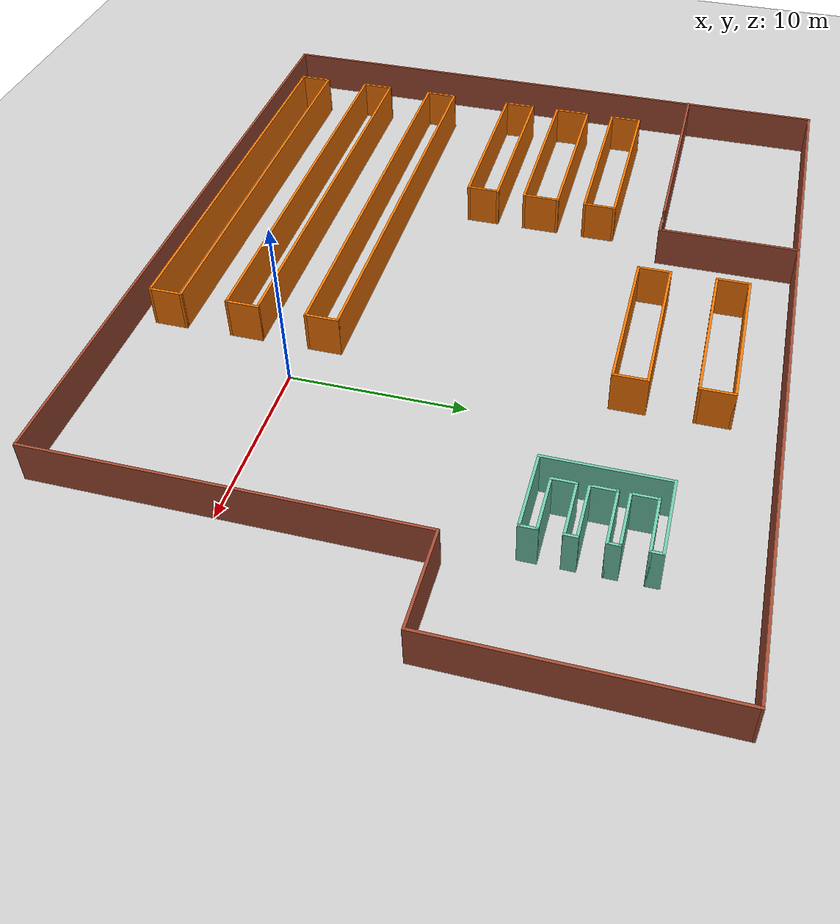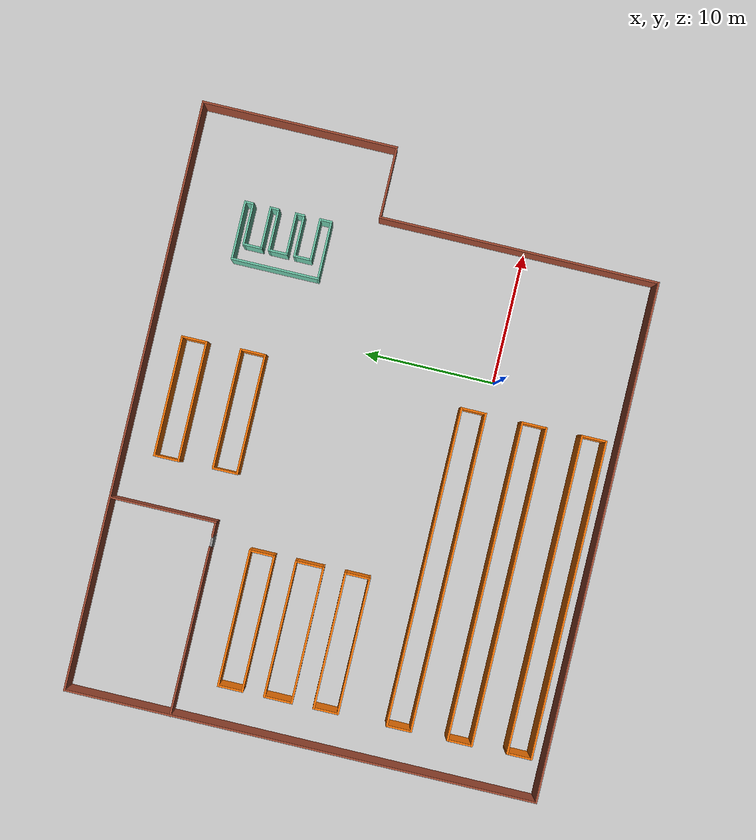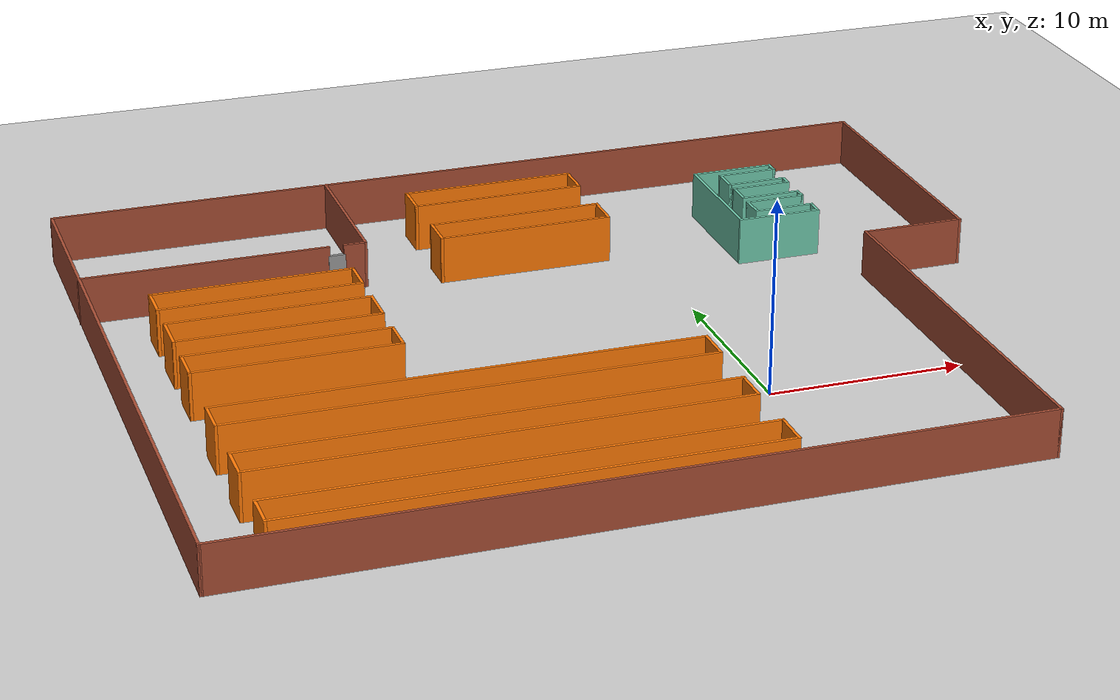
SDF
<sdf version="1.6">
 <world name="default">
  <light name="sun" type="directional">
   <pose>0 0 10 0 -0 0</pose>
   <diffuse>0.8 0.8 0.8 1</diffuse>
   <specular>0.2 0.2 0.2 1</specular>
   <attenuation>
    <range>1000</range>
    <constant>0.9</constant>
    <linear>0.01</linear>
    <quadratic>0.001</quadratic>
   </attenuation>
   <direction>-0.5 0.1 -0.9</direction>
  </light>
  <model name="ground_plane">
   <static>1</static>
   <link name="link">
    <collision name="collision">
     <geometry><plane><normal>0 0 1</normal><size>100 100</size></plane></geometry>
     <surface>
      <contact><collide_bitmask>65535</collide_bitmask></contact>
      <friction><ode><mu>100</mu><mu2>50</mu2></ode></friction>
     </surface>
    </collision>
    <visual name="visual">
     <cast_shadows>0</cast_shadows>
     <geometry><plane><normal>0 0 1</normal><size>100 100</size></plane></geometry>
     <material>
      <script><uri>file://media/materials/scripts/gazebo.material</uri><name>Gazebo/Grey</name></script>
     </material>
    </visual>
   </link>
  </model>
  <gravity>0 0 -9.8</gravity>
  <magnetic_field>6e-06 2.3e-05 -4.2e-05</magnetic_field>
  <atmosphere type="adiabatic"/>
  <physics name="default_physics" default="0" type="ode">
   <max_step_size>0.001</max_step_size>
   <real_time_factor>1</real_time_factor>
   <real_time_update_rate>1000</real_time_update_rate>
  </physics>
  <scene><ambient>0.4 0.4 0.4 1</ambient><background>0.7 0.7 0.7 1</background><shadows>1</shadows></scene>
  <audio><device>default</device></audio>
  <spherical_coordinates>
   <surface_model>EARTH_WGS84</surface_model>
   <latitude_deg>0</latitude_deg>
   <longitude_deg>0</longitude_deg>
   <elevation>0</elevation>
   <heading_deg>0</heading_deg>
  </spherical_coordinates>
  <model name="si_amr_factory">
   <pose>-7.25935 8.01043 0 0 -0 0</pose>
   <link name="Door_0">
    <collision name="Door_0_Collision">
     <geometry><box><size>0.9 0.17 2</size></box></geometry>
     <pose>0 0 1 0 -0 0</pose>
    </collision>
    <visual name="Door_0_Visual">
     <pose>0 0 1 0 -0 0</pose>
     <geometry><box><size>0.9 0.17 2</size></box></geometry>
     <material>
      <script><uri>file://media/materials/scripts/gazebo.material</uri><name>Gazebo/Grey</name></script>
     </material>
    </visual>
    <pose>-9.24755 9.98097 0 0 -0 0</pose>
   </link>
   <link name="Wall_0">
    <collision name="Wall_0_Collision">
     <geometry><box><size>40 0.15 2.5</size></box></geometry>
     <pose>0 0 1.25 0 -0 0</pose>
    </collision>
    <visual name="Wall_0_Visual">
     <pose>0 0 1.25 0 -0 0</pose>
     <geometry><box><size>40 0.15 2.5</size></box></geometry>
     <material>
      <script><uri>file://media/materials/scripts/gazebo.material</uri><name>Gazebo/Bricks</name></script>
      <ambient>1 1 1 1</ambient>
     </material>
     <meta><layer>0</layer></meta>
    </visual>
    <pose>-2.6749 -18.1 0 0 -0 0</pose>
   </link>
   <link name="Wall_1">
    <collision name="Wall_1_Collision">
     <geometry><box><size>21.5 0.15 2.5</size></box></geometry>
     <pose>0 0 1.25 0 -0 0</pose>
    </collision>
    <visual name="Wall_1_Visual">
     <pose>0 0 1.25 0 -0 0</pose>
     <geometry><box><size>21.5 0.15 2.5</size></box></geometry>
     <material>
      <script><uri>file://media/materials/scripts/gazebo.material</uri><name>Gazebo/Bricks</name></script>
      <ambient>1 1 1 1</ambient>
     </material>
     <meta><layer>0</layer></meta>
    </visual>
    <pose>17.2501 -7.425 0 0 -0 1.5708</pose>
   </link>
   <link name="Wall_10">
    <collision name="Wall_10_Collision">
     <geometry><box><size>2 0.15 2.5</size></box></geometry>
     <pose>0 0 1.25 0 -0 0</pose>
    </collision>
    <visual name="Wall_10_Visual">
     <pose>0 0 1.25 0 -0 0</pose>
     <geometry><box><size>2 0.15 2.5</size></box></geometry>
     <material>
      <script><uri>file://media/materials/scripts/gazebo.material</uri><name>Gazebo/Grey</name></script>
      <ambient>0.996078 0.47451 0.0196078 1</ambient>
     </material>
     <meta><layer>0</layer></meta>
    </visual>
    <pose>-19.5227 -16.0937 0 0 -0 1.5708</pose>
   </link>
   <link name="Wall_12">
    <collision name="Wall_12_Collision">
     <geometry><box><size>2 0.15 2.5</size></box></geometry>
     <pose>0 0 1.25 0 -0 0</pose>
    </collision>
    <visual name="Wall_12_Visual">
     <pose>0 0 1.25 0 -0 0</pose>
     <geometry><box><size>2 0.15 2.5</size></box></geometry>
     <material>
      <script><uri>file://media/materials/scripts/gazebo.material</uri><name>Gazebo/Grey</name></script>
      <ambient>0.996078 0.47451 0.0196078 1</ambient>
     </material>
     <meta><layer>0</layer></meta>
    </visual>
    <pose>-19.575 -11.5221 0 0 -0 1.5708</pose>
   </link>
   <link name="Wall_13">
    <collision name="Wall_13_Collision">
     <geometry><box><size>24.5 0.15 2.5</size></box></geometry>
     <pose>0 0 1.25 0 -0 0</pose>
    </collision>
    <visual name="Wall_13_Visual">
     <pose>0 0 1.25 0 -0 0</pose>
     <geometry><box><size>24.5 0.15 2.5</size></box></geometry>
     <material>
      <script><uri>file://media/materials/scripts/gazebo.material</uri><name>Gazebo/Grey</name></script>
      <ambient>0.996078 0.47451 0.0196078 1</ambient>
     </material>
     <meta><layer>0</layer></meta>
    </visual>
    <pose>-7.39999 -10.5971 0 0 -0 0</pose>
   </link>
   <link name="Wall_14">
    <collision name="Wall_14_Collision">
     <geometry><box><size>2 0.15 2.5</size></box></geometry>
     <pose>0 0 1.25 0 -0 0</pose>
    </collision>
    <visual name="Wall_14_Visual">
     <pose>0 0 1.25 0 -0 0</pose>
     <geometry><box><size>2 0.15 2.5</size></box></geometry>
     <material>
      <script><uri>file://media/materials/scripts/gazebo.material</uri><name>Gazebo/Grey</name></script>
      <ambient>0.996078 0.47451 0.0196078 1</ambient>
     </material>
     <meta><layer>0</layer></meta>
    </visual>
    <pose>4.77501 -11.5221 0 0 -0 -1.5708</pose>
   </link>
   <link name="Wall_15">
    <collision name="Wall_15_Collision">
     <geometry><box><size>24.5 0.15 2.5</size></box></geometry>
     <pose>0 0 1.25 0 -0 0</pose>
    </collision>
    <visual name="Wall_15_Visual">
     <pose>0 0 1.25 0 -0 0</pose>
     <geometry><box><size>24.5 0.15 2.5</size></box></geometry>
     <material>
      <script><uri>file://media/materials/scripts/gazebo.material</uri><name>Gazebo/Grey</name></script>
      <ambient>0.996078 0.47451 0.0196078 1</ambient>
     </material>
     <meta><layer>0</layer></meta>
    </visual>
    <pose>-7.39999 -12.4471 0 0 -0 3.14159</pose>
   </link>
   <link name="Wall_17">
    <collision name="Wall_17_Collision">
     <geometry><box><size>2 0.15 2.5</size></box></geometry>
     <pose>0 0 1.25 0 -0 0</pose>
    </collision>
    <visual name="Wall_17_Visual">
     <pose>0 0 1.25 0 -0 0</pose>
     <geometry><box><size>2 0.15 2.5</size></box></geometry>
     <material>
      <script><uri>file://media/materials/scripts/gazebo.material</uri><name>Gazebo/Grey</name></script>
      <ambient>0.996078 0.47451 0.0196078 1</ambient>
     </material>
     <meta><layer>0</layer></meta>
    </visual>
    <pose>-19.575 -6.86388 0 0 -0 1.5708</pose>
   </link>
   <link name="Wall_18">
    <collision name="Wall_18_Collision">
     <geometry><box><size>24.5 0.15 2.5</size></box></geometry>
     <pose>0 0 1.25 0 -0 0</pose>
    </collision>
    <visual name="Wall_18_Visual">
     <pose>0 0 1.25 0 -0 0</pose>
     <geometry><box><size>24.5 0.15 2.5</size></box></geometry>
     <material>
      <script><uri>file://media/materials/scripts/gazebo.material</uri><name>Gazebo/Grey</name></script>
      <ambient>0.996078 0.47451 0.0196078 1</ambient>
     </material>
     <meta><layer>0</layer></meta>
    </visual>
    <pose>-7.39999 -5.93888 0 0 -0 0</pose>
   </link>
   <link name="Wall_19">
    <collision name="Wall_19_Collision">
     <geometry><box><size>2 0.15 2.5</size></box></geometry>
     <pose>0 0 1.25 0 -0 0</pose>
    </collision>
    <visual name="Wall_19_Visual">
     <pose>0 0 1.25 0 -0 0</pose>
     <geometry><box><size>2 0.15 2.5</size></box></geometry>
     <material>
      <script><uri>file://media/materials/scripts/gazebo.material</uri><name>Gazebo/Grey</name></script>
      <ambient>0.996078 0.47451 0.0196078 1</ambient>
     </material>
     <meta><layer>0</layer></meta>
    </visual>
    <pose>4.77501 -6.86388 0 0 -0 -1.5708</pose>
   </link>
   <link name="Wall_2">
    <collision name="Wall_2_Collision">
     <geometry><box><size>5.5 0.15 2.5</size></box></geometry>
     <pose>0 0 1.25 0 -0 0</pose>
    </collision>
    <visual name="Wall_2_Visual">
     <pose>0 0 1.25 0 -0 0</pose>
     <geometry><box><size>5.5 0.15 2.5</size></box></geometry>
     <material>
      <script><uri>file://media/materials/scripts/gazebo.material</uri><name>Gazebo/Bricks</name></script>
      <ambient>1 1 1 1</ambient>
     </material>
     <meta><layer>0</layer></meta>
    </visual>
    <pose>19.9251 3.25 0 0 -0 0</pose>
   </link>
   <link name="Wall_20">
    <collision name="Wall_20_Collision">
     <geometry><box><size>24.5 0.15 2.5</size></box></geometry>
     <pose>0 0 1.25 0 -0 0</pose>
    </collision>
    <visual name="Wall_20_Visual">
     <pose>0 0 1.25 0 -0 0</pose>
     <geometry><box><size>24.5 0.15 2.5</size></box></geometry>
     <material>
      <script><uri>file://media/materials/scripts/gazebo.material</uri><name>Gazebo/Grey</name></script>
      <ambient>0.996078 0.47451 0.0196078 1</ambient>
     </material>
     <meta><layer>0</layer></meta>
    </visual>
    <pose>-7.39999 -7.78888 0 0 -0 3.14159</pose>
   </link>
   <link name="Wall_28">
    <collision name="Wall_28_Collision">
     <geometry><box><size>10.5 0.15 2.5</size></box></geometry>
     <pose>0 0 1.25 0 -0 0</pose>
    </collision>
    <visual name="Wall_28_Visual">
     <pose>0 0 1.25 0 -0 0</pose>
     <geometry><box><size>10.5 0.15 2.5</size></box></geometry>
     <material>
      <script><uri>file://media/materials/scripts/gazebo.material</uri><name>Gazebo/Grey</name></script>
      <ambient>0.996078 0.47451 0.0196078 1</ambient>
     </material>
     <meta><layer>0</layer></meta>
    </visual>
    <pose>-14.3745 -0.32266 0 0 -0 0</pose>
   </link>
   <link name="Wall_29">
    <collision name="Wall_29_Collision">
     <geometry><box><size>2 0.15 2.5</size></box></geometry>
     <pose>0 0 1.25 0 -0 0</pose>
    </collision>
    <visual name="Wall_29_Visual">
     <pose>0 0 1.25 0 -0 0</pose>
     <geometry><box><size>2 0.15 2.5</size></box></geometry>
     <material>
      <script><uri>file://media/materials/scripts/gazebo.material</uri><name>Gazebo/Grey</name></script>
      <ambient>0.996078 0.47451 0.0196078 1</ambient>
     </material>
     <meta><layer>0</layer></meta>
    </visual>
    <pose>-9.19952 -1.24766 0 0 -0 -1.5708</pose>
   </link>
   <link name="Wall_3">
    <collision name="Wall_3_Collision">
     <geometry><box><size>15 0.15 2.5</size></box></geometry>
     <pose>0 0 1.25 0 -0 0</pose>
    </collision>
    <visual name="Wall_3_Visual">
     <pose>0 0 1.25 0 -0 0</pose>
     <geometry><box><size>15 0.15 2.5</size></box></geometry>
     <material>
      <script><uri>file://media/materials/scripts/gazebo.material</uri><name>Gazebo/Bricks</name></script>
      <ambient>1 1 1 1</ambient>
     </material>
     <meta><layer>0</layer></meta>
    </visual>
    <pose>22.6001 10.675 0 0 -0 1.5708</pose>
   </link>
   <link name="Wall_30">
    <collision name="Wall_30_Collision">
     <geometry><box><size>10.5 0.15 2.5</size></box></geometry>
     <pose>0 0 1.25 0 -0 0</pose>
    </collision>
    <visual name="Wall_30_Visual">
     <pose>0 0 1.25 0 -0 0</pose>
     <geometry><box><size>10.5 0.15 2.5</size></box></geometry>
     <material>
      <script><uri>file://media/materials/scripts/gazebo.material</uri><name>Gazebo/Grey</name></script>
      <ambient>0.996078 0.47451 0.0196078 1</ambient>
     </material>
     <meta><layer>0</layer></meta>
    </visual>
    <pose>-14.3745 -2.17266 0 0 -0 3.14159</pose>
   </link>
   <link name="Wall_31">
    <collision name="Wall_31_Collision">
     <geometry><box><size>2 0.15 2.5</size></box></geometry>
     <pose>0 0 1.25 0 -0 0</pose>
    </collision>
    <visual name="Wall_31_Visual">
     <pose>0 0 1.25 0 -0 0</pose>
     <geometry><box><size>2 0.15 2.5</size></box></geometry>
     <material>
      <script><uri>file://media/materials/scripts/gazebo.material</uri><name>Gazebo/Grey</name></script>
      <ambient>0.996078 0.47451 0.0196078 1</ambient>
     </material>
     <meta><layer>0</layer></meta>
    </visual>
    <pose>-19.5495 -1.24766 0 0 -0 1.5708</pose>
   </link>
   <link name="Wall_33">
    <collision name="Wall_33_Collision">
     <geometry><box><size>10.5 0.15 2.5</size></box></geometry>
     <pose>0 0 1.25 0 -0 0</pose>
    </collision>
    <visual name="Wall_33_Visual">
     <pose>0 0 1.25 0 -0 0</pose>
     <geometry><box><size>10.5 0.15 2.5</size></box></geometry>
     <material>
      <script><uri>file://media/materials/scripts/gazebo.material</uri><name>Gazebo/Grey</name></script>
      <ambient>0.996078 0.47451 0.0196078 1</ambient>
     </material>
     <meta><layer>0</layer></meta>
    </visual>
    <pose>-14.3745 3.46933 0 0 -0 0</pose>
   </link>
   <link name="Wall_34">
    <collision name="Wall_34_Collision">
     <geometry><box><size>2.25 0.15 2.5</size></box></geometry>
     <pose>0 0 1.25 0 -0 0</pose>
    </collision>
    <visual name="Wall_34_Visual">
     <pose>0 0 1.25 0 -0 0</pose>
     <geometry><box><size>2.25 0.15 2.5</size></box></geometry>
     <material>
      <script><uri>file://media/materials/scripts/gazebo.material</uri><name>Gazebo/Grey</name></script>
      <ambient>0.996078 0.47451 0.0196078 1</ambient>
     </material>
     <meta><layer>0</layer></meta>
    </visual>
    <pose>-9.19952 2.41933 0 0 -0 -1.5708</pose>
   </link>
   <link name="Wall_35">
    <collision name="Wall_35_Collision">
     <geometry><box><size>10.5 0.15 2.5</size></box></geometry>
     <pose>0 0 1.25 0 -0 0</pose>
    </collision>
    <visual name="Wall_35_Visual">
     <pose>0 0 1.25 0 -0 0</pose>
     <geometry><box><size>10.5 0.15 2.5</size></box></geometry>
     <material>
      <script><uri>file://media/materials/scripts/gazebo.material</uri><name>Gazebo/Grey</name></script>
      <ambient>0.996078 0.47451 0.0196078 1</ambient>
     </material>
     <meta><layer>0</layer></meta>
    </visual>
    <pose>-14.3745 1.36933 0 0 -0 3.14159</pose>
   </link>
   <link name="Wall_36">
    <collision name="Wall_36_Collision">
     <geometry><box><size>2.25 0.15 2.5</size></box></geometry>
     <pose>0 0 1.25 0 -0 0</pose>
    </collision>
    <visual name="Wall_36_Visual">
     <pose>0 0 1.25 0 -0 0</pose>
     <geometry><box><size>2.25 0.15 2.5</size></box></geometry>
     <material>
      <script><uri>file://media/materials/scripts/gazebo.material</uri><name>Gazebo/Grey</name></script>
      <ambient>0.996078 0.47451 0.0196078 1</ambient>
     </material>
     <meta><layer>0</layer></meta>
    </visual>
    <pose>-19.5495 2.41933 0 0 -0 1.5708</pose>
   </link>
   <link name="Wall_38">
    <collision name="Wall_38_Collision">
     <geometry><box><size>2 0.15 2.5</size></box></geometry>
     <pose>0 0 1.25 0 -0 0</pose>
    </collision>
    <visual name="Wall_38_Visual">
     <pose>0 0 1.25 0 -0 0</pose>
     <geometry><box><size>2 0.15 2.5</size></box></geometry>
     <material>
      <script><uri>file://media/materials/scripts/gazebo.material</uri><name>Gazebo/Grey</name></script>
      <ambient>0.996078 0.47451 0.0196078 1</ambient>
     </material>
     <meta><layer>0</layer></meta>
    </visual>
    <pose>-19.5495 6.07966 0 0 -0 1.5708</pose>
   </link>
   <link name="Wall_39">
    <collision name="Wall_39_Collision">
     <geometry><box><size>10.5 0.15 2.5</size></box></geometry>
     <pose>0 0 1.25 0 -0 0</pose>
    </collision>
    <visual name="Wall_39_Visual">
     <pose>0 0 1.25 0 -0 0</pose>
     <geometry><box><size>10.5 0.15 2.5</size></box></geometry>
     <material>
      <script><uri>file://media/materials/scripts/gazebo.material</uri><name>Gazebo/Grey</name></script>
      <ambient>0.996078 0.47451 0.0196078 1</ambient>
     </material>
     <meta><layer>0</layer></meta>
    </visual>
    <pose>-14.3745 7.00466 0 0 -0 0</pose>
   </link>
   <link name="Wall_4">
    <collision name="Wall_4_Collision">
     <geometry><box><size>45.25 0.15 2.5</size></box></geometry>
     <pose>0 0 1.25 0 -0 0</pose>
    </collision>
    <visual name="Wall_4_Visual">
     <pose>0 0 1.25 0 -0 0</pose>
     <geometry><box><size>45.25 0.15 2.5</size></box></geometry>
     <material>
      <script><uri>file://media/materials/scripts/gazebo.material</uri><name>Gazebo/Bricks</name></script>
      <ambient>1 1 1 1</ambient>
     </material>
     <meta><layer>0</layer></meta>
    </visual>
    <pose>0.050104 18.1 0 0 -0 3.14159</pose>
   </link>
   <link name="Wall_40">
    <collision name="Wall_40_Collision">
     <geometry><box><size>2 0.15 2.5</size></box></geometry>
     <pose>0 0 1.25 0 -0 0</pose>
    </collision>
    <visual name="Wall_40_Visual">
     <pose>0 0 1.25 0 -0 0</pose>
     <geometry><box><size>2 0.15 2.5</size></box></geometry>
     <material>
      <script><uri>file://media/materials/scripts/gazebo.material</uri><name>Gazebo/Grey</name></script>
      <ambient>0.996078 0.47451 0.0196078 1</ambient>
     </material>
     <meta><layer>0</layer></meta>
    </visual>
    <pose>-9.19952 6.07966 0 0 -0 -1.5708</pose>
   </link>
   <link name="Wall_41">
    <collision name="Wall_41_Collision">
     <geometry><box><size>10.5 0.15 2.5</size></box></geometry>
     <pose>0 0 1.25 0 -0 0</pose>
    </collision>
    <visual name="Wall_41_Visual">
     <pose>0 0 1.25 0 -0 0</pose>
     <geometry><box><size>10.5 0.15 2.5</size></box></geometry>
     <material>
      <script><uri>file://media/materials/scripts/gazebo.material</uri><name>Gazebo/Grey</name></script>
      <ambient>0.996078 0.47451 0.0196078 1</ambient>
     </material>
     <meta><layer>0</layer></meta>
    </visual>
    <pose>-14.3745 5.15466 0 0 -0 3.14159</pose>
   </link>
   <link name="Wall_46">
    <collision name="Wall_46_Collision">
     <geometry><box><size>9.25 0.15 2.5</size></box></geometry>
     <pose>0 0 1.25 0 -0 0</pose>
    </collision>
    <visual name="Wall_46_Visual">
     <pose>0 0 1.25 0 -0 0</pose>
     <geometry><box><size>9.25 0.15 2.5</size></box></geometry>
     <material>
      <script><uri>file://media/materials/scripts/gazebo.material</uri><name>Gazebo/Grey</name></script>
      <ambient>0.996078 0.47451 0.0196078 1</ambient>
     </material>
     <meta><layer>0</layer></meta>
    </visual>
    <pose>0.710155 11.1135 0 0 -0 0</pose>
   </link>
   <link name="Wall_47">
    <collision name="Wall_47_Collision">
     <geometry><box><size>2 0.15 2.5</size></box></geometry>
     <pose>0 0 1.25 0 -0 0</pose>
    </collision>
    <visual name="Wall_47_Visual">
     <pose>0 0 1.25 0 -0 0</pose>
     <geometry><box><size>2 0.15 2.5</size></box></geometry>
     <material>
      <script><uri>file://media/materials/scripts/gazebo.material</uri><name>Gazebo/Grey</name></script>
      <ambient>0.996078 0.47451 0.0196078 1</ambient>
     </material>
     <meta><layer>0</layer></meta>
    </visual>
    <pose>5.26016 10.1885 0 0 -0 -1.5708</pose>
   </link>
   <link name="Wall_48">
    <collision name="Wall_48_Collision">
     <geometry><box><size>9.25 0.15 2.5</size></box></geometry>
     <pose>0 0 1.25 0 -0 0</pose>
    </collision>
    <visual name="Wall_48_Visual">
     <pose>0 0 1.25 0 -0 0</pose>
     <geometry><box><size>9.25 0.15 2.5</size></box></geometry>
     <material>
      <script><uri>file://media/materials/scripts/gazebo.material</uri><name>Gazebo/Grey</name></script>
      <ambient>0.996078 0.47451 0.0196078 1</ambient>
     </material>
     <meta><layer>0</layer></meta>
    </visual>
    <pose>0.710155 9.2635 0 0 -0 3.14159</pose>
   </link>
   <link name="Wall_49">
    <collision name="Wall_49_Collision">
     <geometry><box><size>2 0.15 2.5</size></box></geometry>
     <pose>0 0 1.25 0 -0 0</pose>
    </collision>
    <visual name="Wall_49_Visual">
     <pose>0 0 1.25 0 -0 0</pose>
     <geometry><box><size>2 0.15 2.5</size></box></geometry>
     <material>
      <script><uri>file://media/materials/scripts/gazebo.material</uri><name>Gazebo/Grey</name></script>
      <ambient>0.996078 0.47451 0.0196078 1</ambient>
     </material>
     <meta><layer>0</layer></meta>
    </visual>
    <pose>-3.83984 10.1885 0 0 -0 1.5708</pose>
   </link>
   <link name="Wall_5">
    <collision name="Wall_5_Collision">
     <geometry><box><size>36.3501 0.15 2.5</size></box></geometry>
     <pose>0 0 1.25 0 -0 0</pose>
    </collision>
    <visual name="Wall_5_Visual">
     <pose>0 0 1.25 0 -0 0</pose>
     <geometry><box><size>36.3501 0.15 2.5</size></box></geometry>
     <material>
      <script><uri>file://media/materials/scripts/gazebo.material</uri><name>Gazebo/Bricks</name></script>
      <ambient>1 1 1 1</ambient>
     </material>
     <meta><layer>0</layer></meta>
    </visual>
    <pose>-22.5499 -0 0 0 -0 -1.57356</pose>
   </link>
   <link name="Wall_51">
    <collision name="Wall_51_Collision">
     <geometry><box><size>1.25 0.15 2.5</size></box></geometry>
     <pose>0 0 1.25 0 -0 0</pose>
    </collision>
    <visual name="Wall_51_Visual">
     <pose>0 0 1.25 0 -0 0</pose>
     <geometry><box><size>1.25 0.15 2.5</size></box></geometry>
     <material>
      <script><uri>file://media/materials/scripts/gazebo.material</uri><name>Gazebo/Bricks</name></script>
      <ambient>1 1 1 1</ambient>
     </material>
     <meta><layer>0</layer></meta>
    </visual>
    <pose>-8.26936 9.98834 0 0 -0 0</pose>
   </link>
   <link name="Wall_52">
    <collision name="Wall_52_Collision">
     <geometry><box><size>8.25 0.15 2.5</size></box></geometry>
     <pose>0 0 1.25 0 -0 0</pose>
    </collision>
    <visual name="Wall_52_Visual">
     <pose>0 0 1.25 0 -0 0</pose>
     <geometry><box><size>8.25 0.15 2.5</size></box></geometry>
     <material>
      <script><uri>file://media/materials/scripts/gazebo.material</uri><name>Gazebo/Bricks</name></script>
      <ambient>1 1 1 1</ambient>
     </material>
     <meta><layer>0</layer></meta>
    </visual>
    <pose>-7.71936 14.0383 0 0 -0 1.5708</pose>
   </link>
   <link name="Wall_56">
    <collision name="Wall_56_Collision">
     <geometry><box><size>13 0.15 2.5</size></box></geometry>
     <pose>0 0 1.25 0 -0 0</pose>
    </collision>
    <visual name="Wall_56_Visual">
     <pose>0 0 1.25 0 -0 0</pose>
     <geometry><box><size>13 0.15 2.5</size></box></geometry>
     <material>
      <script><uri>file://media/materials/scripts/gazebo.material</uri><name>Gazebo/Bricks</name></script>
      <ambient>1 1 1 1</ambient>
     </material>
     <meta><layer>0</layer></meta>
    </visual>
    <pose>-16.1225 9.98901 0 0 -0 3.14159</pose>
   </link>
   <link name="Wall_58">
    <collision name="Wall_58_Collision">
     <geometry><box><size>9.25 0.15 2.5</size></box></geometry>
     <pose>0 0 1.25 0 -0 0</pose>
    </collision>
    <visual name="Wall_58_Visual">
     <pose>0 0 1.25 0 -0 0</pose>
     <geometry><box><size>9.25 0.15 2.5</size></box></geometry>
     <material>
      <script><uri>file://media/materials/scripts/gazebo.material</uri><name>Gazebo/Grey</name></script>
      <ambient>0.996078 0.47451 0.0196078 1</ambient>
     </material>
     <meta><layer>0</layer></meta>
    </visual>
    <pose>0.645453 15.5911 0 0 -0 0</pose>
   </link>
   <link name="Wall_59">
    <collision name="Wall_59_Collision">
     <geometry><box><size>2 0.15 2.5</size></box></geometry>
     <pose>0 0 1.25 0 -0 0</pose>
    </collision>
    <visual name="Wall_59_Visual">
     <pose>0 0 1.25 0 -0 0</pose>
     <geometry><box><size>2 0.15 2.5</size></box></geometry>
     <material>
      <script><uri>file://media/materials/scripts/gazebo.material</uri><name>Gazebo/Grey</name></script>
      <ambient>0.996078 0.47451 0.0196078 1</ambient>
     </material>
     <meta><layer>0</layer></meta>
    </visual>
    <pose>5.19545 14.6661 0 0 -0 -1.5708</pose>
   </link>
   <link name="Wall_60">
    <collision name="Wall_60_Collision">
     <geometry><box><size>9.25 0.15 2.5</size></box></geometry>
     <pose>0 0 1.25 0 -0 0</pose>
    </collision>
    <visual name="Wall_60_Visual">
     <pose>0 0 1.25 0 -0 0</pose>
     <geometry><box><size>9.25 0.15 2.5</size></box></geometry>
     <material>
      <script><uri>file://media/materials/scripts/gazebo.material</uri><name>Gazebo/Grey</name></script>
      <ambient>0.996078 0.47451 0.0196078 1</ambient>
     </material>
     <meta><layer>0</layer></meta>
    </visual>
    <pose>0.645453 13.7411 0 0 -0 3.14159</pose>
   </link>
   <link name="Wall_61">
    <collision name="Wall_61_Collision">
     <geometry><box><size>2 0.15 2.5</size></box></geometry>
     <pose>0 0 1.25 0 -0 0</pose>
    </collision>
    <visual name="Wall_61_Visual">
     <pose>0 0 1.25 0 -0 0</pose>
     <geometry><box><size>2 0.15 2.5</size></box></geometry>
     <material>
      <script><uri>file://media/materials/scripts/gazebo.material</uri><name>Gazebo/Grey</name></script>
      <ambient>0.996078 0.47451 0.0196078 1</ambient>
     </material>
     <meta><layer>0</layer></meta>
    </visual>
    <pose>-3.90455 14.6661 0 0 -0 1.5708</pose>
   </link>
   <link name="Wall_63">
    <collision name="Wall_63_Collision">
     <geometry><box><size>3.25 0.15 2.5</size></box></geometry>
     <pose>0 0 1.25 0 -0 0</pose>
    </collision>
    <visual name="Wall_63_Visual">
     <pose>0 0 1.25 0 -0 0</pose>
     <geometry><box><size>3.25 0.15 2.5</size></box></geometry>
     <material>
      <script><uri>file://media/materials/scripts/gazebo.material</uri><name>Gazebo/Grey</name></script>
      <ambient>0.435294 0.796078 0.67451 1</ambient>
     </material>
     <meta><layer>0</layer></meta>
    </visual>
    <pose>14.518 7.57767 0 0 -0 0</pose>
   </link>
   <link name="Wall_64">
    <collision name="Wall_64_Collision">
     <geometry><box><size>1 0.15 2.5</size></box></geometry>
     <pose>0 0 1.25 0 -0 0</pose>
    </collision>
    <visual name="Wall_64_Visual">
     <pose>0 0 1.25 0 -0 0</pose>
     <geometry><box><size>1 0.15 2.5</size></box></geometry>
     <material>
      <script><uri>file://media/materials/scripts/gazebo.material</uri><name>Gazebo/Grey</name></script>
      <ambient>0.435294 0.796078 0.67451 1</ambient>
     </material>
     <meta><layer>0</layer></meta>
    </visual>
    <pose>16.068 7.15267 0 0 -0 -1.5708</pose>
   </link>
   <link name="Wall_67">
    <collision name="Wall_67_Collision">
     <geometry><box><size>4.5 0.15 2.5</size></box></geometry>
     <pose>0 0 1.25 0 -0 0</pose>
    </collision>
    <visual name="Wall_67_Visual">
     <pose>0 0 1.25 0 -0 0</pose>
     <geometry><box><size>4.5 0.15 2.5</size></box></geometry>
     <material>
      <script><uri>file://media/materials/scripts/gazebo.material</uri><name>Gazebo/Grey</name></script>
      <ambient>0.435294 0.796078 0.67451 1</ambient>
     </material>
     <meta><layer>0</layer></meta>
    </visual>
    <pose>13.893 6.72767 0 0 -0 3.14159</pose>
   </link>
   <link name="Wall_68">
    <collision name="Wall_68_Collision">
     <geometry><box><size>6.75 0.15 2.5</size></box></geometry>
     <pose>0 0 1.25 0 -0 0</pose>
    </collision>
    <visual name="Wall_68_Visual">
     <pose>0 0 1.25 0 -0 0</pose>
     <geometry><box><size>6.75 0.15 2.5</size></box></geometry>
     <material>
      <script><uri>file://media/materials/scripts/gazebo.material</uri><name>Gazebo/Grey</name></script>
      <ambient>0.435294 0.796078 0.67451 1</ambient>
     </material>
     <meta><layer>0</layer></meta>
    </visual>
    <pose>11.718 10.0277 0 0 -0 1.5708</pose>
   </link>
   <link name="Wall_69">
    <collision name="Wall_69_Collision">
     <geometry><box><size>4.5 0.15 2.5</size></box></geometry>
     <pose>0 0 1.25 0 -0 0</pose>
    </collision>
    <visual name="Wall_69_Visual">
     <pose>0 0 1.25 0 -0 0</pose>
     <geometry><box><size>4.5 0.15 2.5</size></box></geometry>
     <material>
      <script><uri>file://media/materials/scripts/gazebo.material</uri><name>Gazebo/Grey</name></script>
      <ambient>0.435294 0.796078 0.67451 1</ambient>
     </material>
     <meta><layer>0</layer></meta>
    </visual>
    <pose>13.893 13.3277 0 0 -0 0</pose>
   </link>
   <link name="Wall_7">
    <collision name="Wall_7_Collision">
     <geometry><box><size>24.5 0.15 2.5</size></box></geometry>
     <pose>0 0 1.25 0 -0 0</pose>
    </collision>
    <visual name="Wall_7_Visual">
     <pose>0 0 1.25 0 -0 0</pose>
     <geometry><box><size>24.5 0.15 2.5</size></box></geometry>
     <material>
      <script><uri>file://media/materials/scripts/gazebo.material</uri><name>Gazebo/Grey</name></script>
      <ambient>0.996078 0.47451 0.0196078 1</ambient>
     </material>
     <meta><layer>0</layer></meta>
    </visual>
    <pose>-7.34765 -15.1687 0 0 -0 0</pose>
   </link>
   <link name="Wall_70">
    <collision name="Wall_70_Collision">
     <geometry><box><size>0.75 0.15 2.5</size></box></geometry>
     <pose>0 0 1.25 0 -0 0</pose>
    </collision>
    <visual name="Wall_70_Visual">
     <pose>0 0 1.25 0 -0 0</pose>
     <geometry><box><size>0.75 0.15 2.5</size></box></geometry>
     <material>
      <script><uri>file://media/materials/scripts/gazebo.material</uri><name>Gazebo/Grey</name></script>
      <ambient>0.435294 0.796078 0.67451 1</ambient>
     </material>
     <meta><layer>0</layer></meta>
    </visual>
    <pose>16.068 13.0277 0 0 -0 -1.5708</pose>
   </link>
   <link name="Wall_71">
    <collision name="Wall_71_Collision">
     <geometry><box><size>3.25 0.15 2.5</size></box></geometry>
     <pose>0 0 1.25 0 -0 0</pose>
    </collision>
    <visual name="Wall_71_Visual">
     <pose>0 0 1.25 0 -0 0</pose>
     <geometry><box><size>3.25 0.15 2.5</size></box></geometry>
     <material>
      <script><uri>file://media/materials/scripts/gazebo.material</uri><name>Gazebo/Grey</name></script>
      <ambient>0.435294 0.796078 0.67451 1</ambient>
     </material>
     <meta><layer>0</layer></meta>
    </visual>
    <pose>14.518 12.7277 0 0 -0 3.14159</pose>
   </link>
   <link name="Wall_72">
    <collision name="Wall_72_Collision">
     <geometry><box><size>1.5 0.15 2.5</size></box></geometry>
     <pose>0 0 1.25 0 -0 0</pose>
    </collision>
    <visual name="Wall_72_Visual">
     <pose>0 0 1.25 0 -0 0</pose>
     <geometry><box><size>1.5 0.15 2.5</size></box></geometry>
     <material>
      <script><uri>file://media/materials/scripts/gazebo.material</uri><name>Gazebo/Grey</name></script>
      <ambient>0.435294 0.796078 0.67451 1</ambient>
     </material>
     <meta><layer>0</layer></meta>
    </visual>
    <pose>12.968 12.0527 0 0 -0 -1.5708</pose>
   </link>
   <link name="Wall_73">
    <collision name="Wall_73_Collision">
     <geometry><box><size>3.25 0.15 2.5</size></box></geometry>
     <pose>0 0 1.25 0 -0 0</pose>
    </collision>
    <visual name="Wall_73_Visual">
     <pose>0 0 1.25 0 -0 0</pose>
     <geometry><box><size>3.25 0.15 2.5</size></box></geometry>
     <material>
      <script><uri>file://media/materials/scripts/gazebo.material</uri><name>Gazebo/Grey</name></script>
      <ambient>0.435294 0.796078 0.67451 1</ambient>
     </material>
     <meta><layer>0</layer></meta>
    </visual>
    <pose>14.518 11.3777 0 0 -0 0</pose>
   </link>
   <link name="Wall_74">
    <collision name="Wall_74_Collision">
     <geometry><box><size>0.75 0.15 2.5</size></box></geometry>
     <pose>0 0 1.25 0 -0 0</pose>
    </collision>
    <visual name="Wall_74_Visual">
     <pose>0 0 1.25 0 -0 0</pose>
     <geometry><box><size>0.75 0.15 2.5</size></box></geometry>
     <material>
      <script><uri>file://media/materials/scripts/gazebo.material</uri><name>Gazebo/Grey</name></script>
      <ambient>0.435294 0.796078 0.67451 1</ambient>
     </material>
     <meta><layer>0</layer></meta>
    </visual>
    <pose>16.068 11.0777 0 0 -0 -1.5708</pose>
   </link>
   <link name="Wall_75">
    <collision name="Wall_75_Collision">
     <geometry><box><size>3.25 0.15 2.5</size></box></geometry>
     <pose>0 0 1.25 0 -0 0</pose>
    </collision>
    <visual name="Wall_75_Visual">
     <pose>0 0 1.25 0 -0 0</pose>
     <geometry><box><size>3.25 0.15 2.5</size></box></geometry>
     <material>
      <script><uri>file://media/materials/scripts/gazebo.material</uri><name>Gazebo/Grey</name></script>
      <ambient>0.435294 0.796078 0.67451 1</ambient>
     </material>
     <meta><layer>0</layer></meta>
    </visual>
    <pose>14.518 10.7777 0 0 -0 3.14159</pose>
   </link>
   <link name="Wall_76">
    <collision name="Wall_76_Collision">
     <geometry><box><size>1.5 0.15 2.5</size></box></geometry>
     <pose>0 0 1.25 0 -0 0</pose>
    </collision>
    <visual name="Wall_76_Visual">
     <pose>0 0 1.25 0 -0 0</pose>
     <geometry><box><size>1.5 0.15 2.5</size></box></geometry>
     <material>
      <script><uri>file://media/materials/scripts/gazebo.material</uri><name>Gazebo/Grey</name></script>
      <ambient>0.435294 0.796078 0.67451 1</ambient>
     </material>
     <meta><layer>0</layer></meta>
    </visual>
    <pose>12.968 10.1027 0 0 -0 -1.5708</pose>
   </link>
   <link name="Wall_77">
    <collision name="Wall_77_Collision">
     <geometry><box><size>3.25 0.15 2.5</size></box></geometry>
     <pose>0 0 1.25 0 -0 0</pose>
    </collision>
    <visual name="Wall_77_Visual">
     <pose>0 0 1.25 0 -0 0</pose>
     <geometry><box><size>3.25 0.15 2.5</size></box></geometry>
     <material>
      <script><uri>file://media/materials/scripts/gazebo.material</uri><name>Gazebo/Grey</name></script>
      <ambient>0.435294 0.796078 0.67451 1</ambient>
     </material>
     <meta><layer>0</layer></meta>
    </visual>
    <pose>14.518 9.42767 0 0 -0 0</pose>
   </link>
   <link name="Wall_78">
    <collision name="Wall_78_Collision">
     <geometry><box><size>0.75 0.15 2.5</size></box></geometry>
     <pose>0 0 1.25 0 -0 0</pose>
    </collision>
    <visual name="Wall_78_Visual">
     <pose>0 0 1.25 0 -0 0</pose>
     <geometry><box><size>0.75 0.15 2.5</size></box></geometry>
     <material>
      <script><uri>file://media/materials/scripts/gazebo.material</uri><name>Gazebo/Grey</name></script>
      <ambient>0.435294 0.796078 0.67451 1</ambient>
     </material>
     <meta><layer>0</layer></meta>
    </visual>
    <pose>16.068 9.12767 0 0 -0 -1.5708</pose>
   </link>
   <link name="Wall_79">
    <collision name="Wall_79_Collision">
     <geometry><box><size>3.25 0.15 2.5</size></box></geometry>
     <pose>0 0 1.25 0 -0 0</pose>
    </collision>
    <visual name="Wall_79_Visual">
     <pose>0 0 1.25 0 -0 0</pose>
     <geometry><box><size>3.25 0.15 2.5</size></box></geometry>
     <material>
      <script><uri>file://media/materials/scripts/gazebo.material</uri><name>Gazebo/Grey</name></script>
      <ambient>0.435294 0.796078 0.67451 1</ambient>
     </material>
     <meta><layer>0</layer></meta>
    </visual>
    <pose>14.518 8.82767 0 0 -0 3.14159</pose>
   </link>
   <link name="Wall_8">
    <collision name="Wall_8_Collision">
     <geometry><box><size>2 0.15 2.5</size></box></geometry>
     <pose>0 0 1.25 0 -0 0</pose>
    </collision>
    <visual name="Wall_8_Visual">
     <pose>0 0 1.25 0 -0 0</pose>
     <geometry><box><size>2 0.15 2.5</size></box></geometry>
     <material>
      <script><uri>file://media/materials/scripts/gazebo.material</uri><name>Gazebo/Grey</name></script>
      <ambient>0.996078 0.47451 0.0196078 1</ambient>
     </material>
     <meta><layer>0</layer></meta>
    </visual>
    <pose>4.82734 -16.0937 0 0 -0 -1.5708</pose>
   </link>
   <link name="Wall_80">
    <collision name="Wall_80_Collision">
     <geometry><box><size>1.4 0.15 2.5</size></box></geometry>
     <pose>0 0 1.25 0 -0 0</pose>
    </collision>
    <visual name="Wall_80_Visual">
     <pose>0 0 1.25 0 -0 0</pose>
     <geometry><box><size>1.4 0.15 2.5</size></box></geometry>
     <material>
      <script><uri>file://media/materials/scripts/gazebo.material</uri><name>Gazebo/Grey</name></script>
      <ambient>0.435294 0.796078 0.67451 1</ambient>
     </material>
     <meta><layer>0</layer></meta>
    </visual>
    <pose>12.968 8.20267 0 0 -0 -1.5708</pose>
   </link>
   <link name="Wall_9">
    <collision name="Wall_9_Collision">
     <geometry><box><size>24.5 0.15 2.5</size></box></geometry>
     <pose>0 0 1.25 0 -0 0</pose>
    </collision>
    <visual name="Wall_9_Visual">
     <pose>0 0 1.25 0 -0 0</pose>
     <geometry><box><size>24.5 0.15 2.5</size></box></geometry>
     <material>
      <script><uri>file://media/materials/scripts/gazebo.material</uri><name>Gazebo/Grey</name></script>
      <ambient>0.996078 0.47451 0.0196078 1</ambient>
     </material>
     <meta><layer>0</layer></meta>
    </visual>
    <pose>-7.34765 -17.0187 0 0 -0 3.14159</pose>
   </link>
   <static>1</static>
  </model>
 </world>
</sdf>
